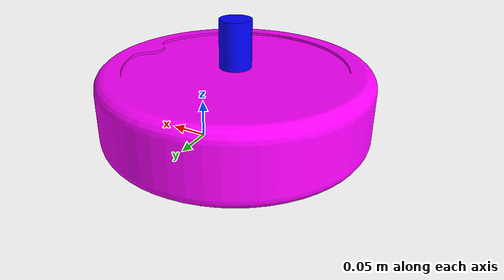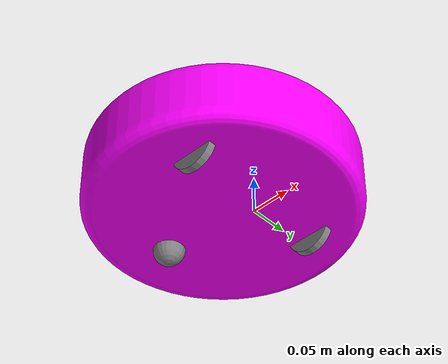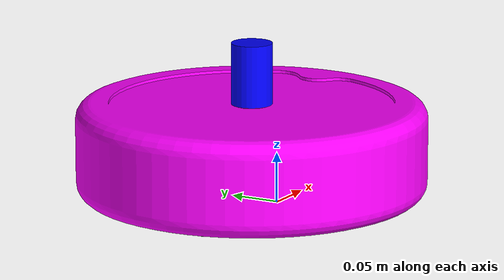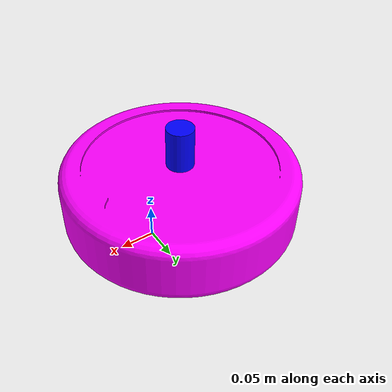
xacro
<robot name="roomba" xmlns:xacro="http://ros.org/wiki/xacro">
  <material name="purple">
    <color rgba="1.0 0.0 1.0 2.5"/>
  </material>
  <material name="grey">
    <color rgba="0.5 0.5 0.5 2.5"/>
  </material>
  <material name="blue">
    <color rgba="0.0 0.0 1.0 2.5"/>
  </material>

  <xacro:macro name="wheel_macro" params="parent prefix xyz">
    <joint name="${prefix}_joint" type="continuous">
      <origin xyz="${xyz}" rpy="${radians(-90)} 0 0"/>
      <parent link="${parent}"/>
      <child  link="${prefix}_link"/>
      <axis xyz="0 0 1" />
      <limit velocity="12.0" effort="0.4" />
      <dynamics damping="0.1"/>
    </joint>
    <transmission name="${prefix}_trans">
      <type>transmission_interface/SimpleTransmission</type>
      <joint name="${prefix}_joint">
          <hardwareInterface>hardware_interface/VelocityJointInterface</hardwareInterface>
      </joint>
      <actuator name="${prefix}_motor">
        <hardwareInterface>hardware_interface/VelocityJointInterface</hardwareInterface>
        <mechanismReduction>1</mechanismReduction>
      </actuator>
    </transmission>
    <link name="${prefix}_link">
      <inertial>
        <origin xyz="0 0 0" rpy="0 0 0"/>
        <mass value="0.1"/>
        <inertia ixx="0.0001" ixy="0.0" ixz="0.0" iyy="0.0001" iyz="0.0" izz="0.0001"/>
      </inertial>
      <visual>
        <geometry>
          <cylinder radius="0.03" length="0.01" />
        </geometry>
        <material name="grey"/>
      </visual>
      <collision>
        <geometry>
          <cylinder radius="0.03" length="0.01" />
        </geometry>
      </collision>
    </link>
    <gazebo reference="${prefix}_link">
      <material>Gazebo/Grey</material>
      <mu1 value="2.5" />
      <mu2 value="2.5" />
      <kp value="50000" />
      <kd value="10" />
    </gazebo>
  </xacro:macro>

  <xacro:wheel_macro prefix="left_wheel"  parent="base_link" xyz="0 0.1 0.03"/>
  <xacro:wheel_macro prefix="right_wheel" parent="base_link" xyz="0 -0.1 0.03"/>

  <link name="base_link"/>

  <joint name="body_joint" type="fixed">
    <parent link="base_link"/>
    <child  link="body_link"/>
    <origin xyz="-0.05 0 0.02" rpy="0 0 0"/>
  </joint>
  <link name="body_link">
    <inertial>
      <origin xyz="0 0 0" rpy="0 0 0"/>
      <mass value="0.1"/>
      <inertia ixx="0.0001" ixy="0.0" ixz="0.0" iyy="0.0001" iyz="0.0" izz="0.0001"/>
    </inertial>
    <visual>
      <geometry>
        <mesh filename="package://roombot_gazebo/stl/Roomba_model.stl" />
      </geometry>
      <origin xyz="0 0 0" rpy="0 0 0"/>
      <material name="purple"/>
    </visual>
    <collision>
      <geometry>
        <mesh filename="package://roombot_gazebo/stl/Roomba_model.stl" />
      </geometry>
      <origin xyz="0 0 0" rpy="0 0 0"/>
      <material name="purple"/>
    </collision>
  </link>
  <gazebo reference="body_link">
    <material>Gazebo/Purple</material>
  </gazebo>

  <joint name="ball_joint" type="fixed">
    <parent link="base_link"/>
    <child  link="ball_link"/>
    <origin xyz="-0.14 0 0.02" rpy="0 0 0"/>
  </joint>
  <link name="ball_link">
    <visual>
      <origin xyz="0 0 0" rpy="0 0 0" />
      <geometry>
        <sphere radius="0.02" />
      </geometry>
      <material name="grey" />
    </visual>
    <collision>
      <origin xyz="0 0 0" rpy="0 0 0" />
      <geometry>
        <sphere radius="0.02" />
      </geometry>
      <material name="grey" />
    </collision>
  </link>
  <gazebo reference="ball_link">
    <material>Gazebo/Grey</material>
    <mu1 value="0.5" />
    <mu2 value="0.5" />
  </gazebo>

  <xacro:macro name="laser_macro" params="parent prefix xyz">
    <joint name="${prefix}_joint" type="fixed">
      <parent link="${parent}"/>
      <child  link="${prefix}_link"/>
      <origin xyz="${xyz}" rpy="0 0 0"/>
    </joint>
    <link name="${prefix}_link">
      <visual>
        <origin xyz="0 0 0" rpy="0 0 0" />
        <geometry>
          <cylinder radius="0.02" length="0.06" />
        </geometry>
        <material name="blue" />
      </visual>
      <collision>
        <origin xyz="0 0 0" rpy="0 0 0"/>
        <geometry>
          <cylinder radius="0.02" length="0.06" />
        </geometry>
      </collision>
    </link>
    <gazebo reference="${prefix}_link">
      <material>Gazebo/Blue</material>
      <sensor type="ray" name="${prefix}">
        <pose>0 0 0 0 0 0</pose>
        <visualize>false</visualize>
        <update_rate>10</update_rate>
        <ray>
          <scan>
            <horizontal>
              <samples>400</samples>
              <resolution>1</resolution>
              <min_angle>${radians(-90)}</min_angle>
              <max_angle>${radians( 90)}</max_angle>
            </horizontal>
          </scan>
          <range>
            <min>0.10</min>
            <max>20.0</max>
            <resolution>0.01</resolution>
          </range>
          <noise>
            <type>gaussian</type>
            <mean>0.0</mean>
            <stddev>0.01</stddev>
          </noise>
        </ray>
        <plugin name="gazebo_ros_lidar_controller" filename="libgazebo_ros_laser.so">
          <topicName>/${prefix}_link/scan</topicName>
          <frameName>${prefix}_link</frameName>
        </plugin>
      </sensor>
    </gazebo>
  </xacro:macro>

  <xacro:laser_macro prefix="lidar" parent="base_link" xyz="-0.05 0 0.14"/>

  <xacro:macro name="imu_macro" params="parent prefix xyz">
    <joint name="imu_joint" type="fixed">
      <parent link="${parent}"/>
      <child  link="${prefix}_link"/>
      <origin xyz="${xyz}" rpy="0 0 0"/>
    </joint>
    <link name="${prefix}_link"/>
    <gazebo reference="${prefix}_link">
      <gravity>true</gravity>
      <sensor name="imu_sensor" type="imu">
        <always_on>true</always_on>
        <update_rate>100</update_rate>
        <visualize>true</visualize>
        <topic>data</topic>
        <plugin filename="libgazebo_ros_imu_sensor.so" name="imu_plugin">
          <topicName>${prefix}/data</topicName>
          <bodyName>${prefix}_link</bodyName>
          <updateRateHZ>10.0</updateRateHZ>
          <gaussianNoise>0.0</gaussianNoise>
          <xyzOffset>0 0 0</xyzOffset>
          <rpyOffset>0 0 0</rpyOffset>
          <frameName>${prefix}_link</frameName>
        </plugin>
        <pose>0 0 0 0 0 0</pose>
      </sensor>
    </gazebo>
  </xacro:macro>

  <xacro:imu_macro prefix="imu" parent="base_link" xyz="-0.05 0 0"/>

  <xacro:macro name="camera_macro" params="parent prefix xyz">
    <joint name="${prefix}_joint" type="fixed">
      <parent link="${parent}"/>
      <child  link="${prefix}_link"/>
      <origin xyz="${xyz}" rpy="${radians(-90)} 0 ${radians(-90)}"/>
    </joint>
    <link name="${prefix}_link"/>
    <gazebo reference="${prefix}_link">
      <sensor type="camera" name="${prefix}">
        <update_rate>10.0</update_rate>
        <camera name="${prefix}">
          <pose>0 0 0 0 ${radians(-90)} ${radians(90)}</pose>
          <horizontal_fov>1.3962634</horizontal_fov>
          <image>
            <width>800</width>
            <height>600</height>
            <format>R8G8B8</format>
          </image>
          <clip>
            <near>0.02</near>
            <far>300</far>
          </clip>
          <noise>
            <type>gaussian</type>
            <mean>0.0</mean>
            <stddev>0.007</stddev>
          </noise>
        </camera>
        <plugin name="camera_controller" filename="libgazebo_ros_camera.so">
          <alwaysOn>true</alwaysOn>
          <updateRate>0.0</updateRate>
          <cameraName>${prefix}</cameraName>
          <imageTopicName>image_raw</imageTopicName>
          <cameraInfoTopicName>camera_info</cameraInfoTopicName>
          <frameName>${prefix}_link</frameName>
          <hackBaseline>0.07</hackBaseline>
          <distortionK1>0.0</distortionK1>
          <distortionK2>0.0</distortionK2>
          <distortionK3>0.0</distortionK3>
          <distortionT1>0.0</distortionT1>
          <distortionT2>0.0</distortionT2>
        </plugin>
      </sensor>
    </gazebo>
  </xacro:macro>

  <xacro:camera_macro prefix="camera" parent="base_link" xyz="-0.05 0 0.3"/>

  <gazebo>
    <plugin name="gazebo_ros_control" filename="libgazebo_ros_control.so">
      <robotNamespace>/dtw_robot</robotNamespace>
    </plugin>
  </gazebo>
</robot>
